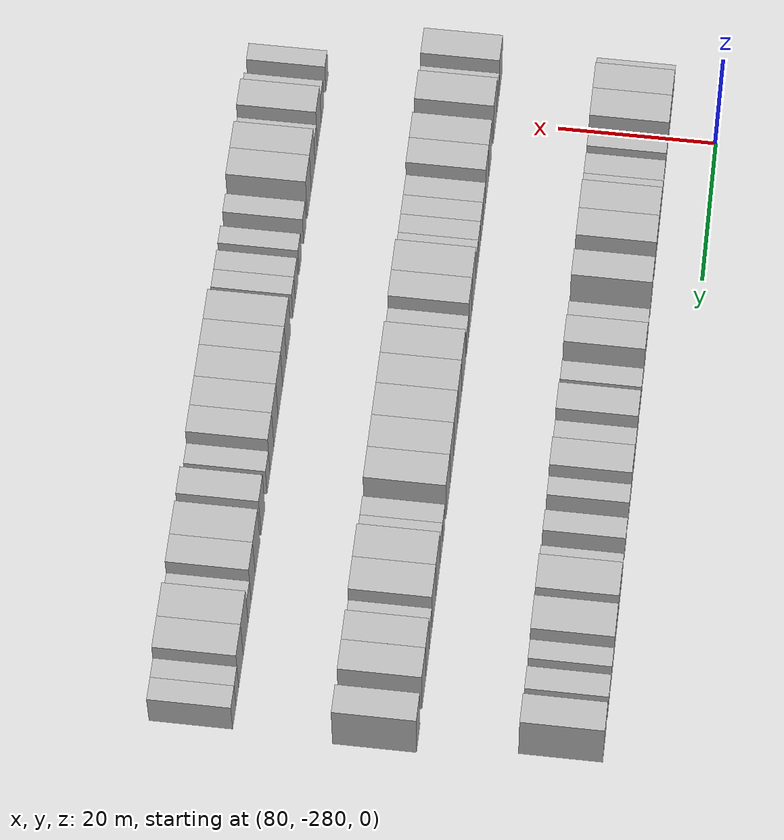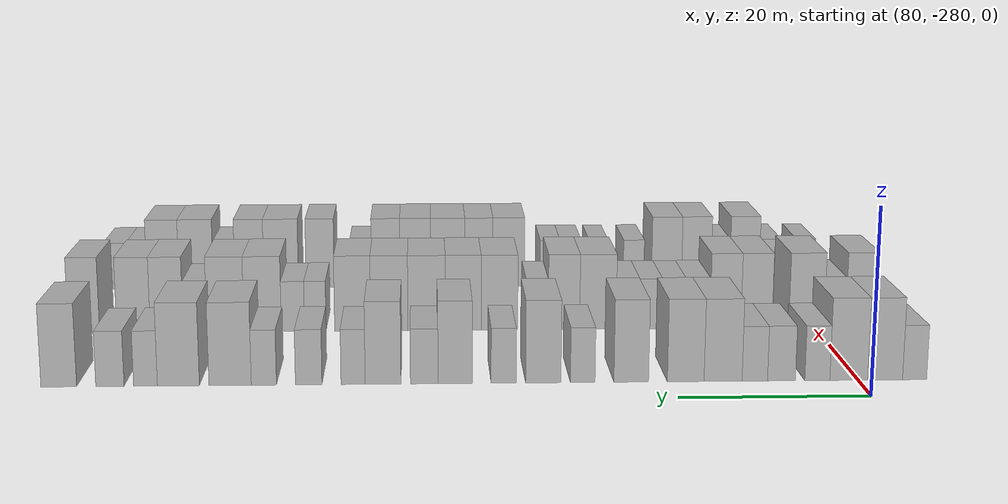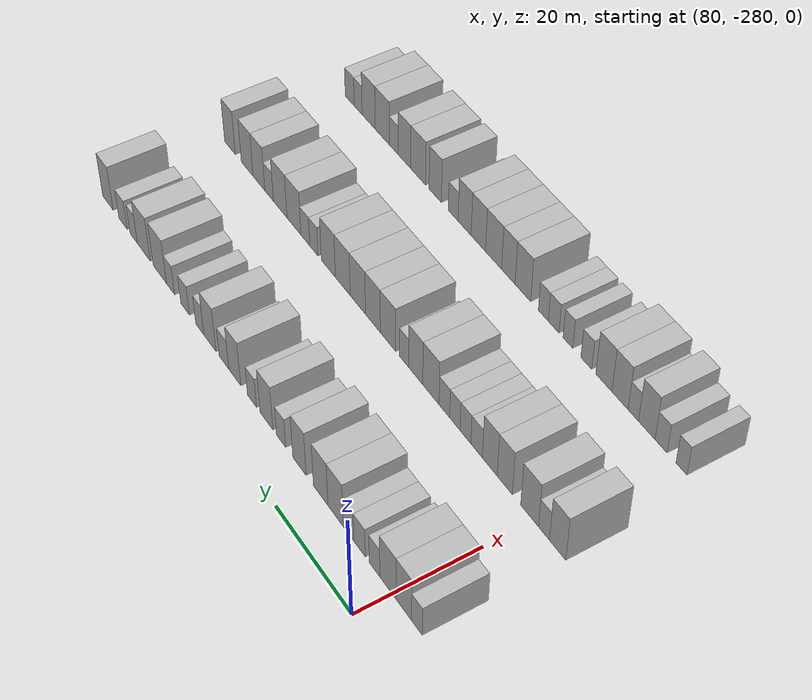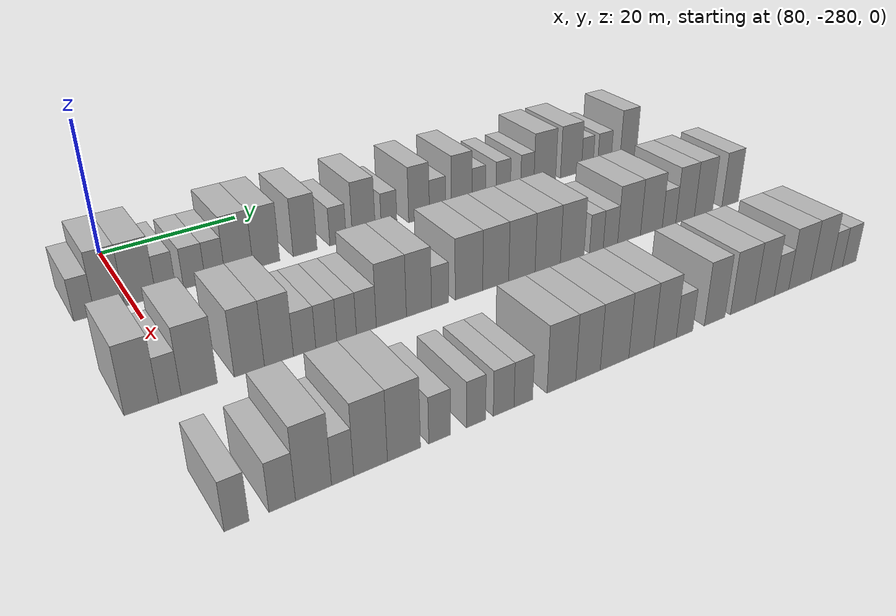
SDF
<sdf version="1.6">
 <world name="default">
  <model name="building_603">
   <static>1</static>
   <pose>91.0000 -286.0700 0 0.000000 0.000000 0.000000</pose>
   <link name="link">
    <pose>0 0 3.00 0 0 0</pose>
    <collision name="collision"><geometry><box><size>10.0000 2.5868 6.0000</size></box></geometry></collision>
    <visual name="visual">
     <cast_shadows>0</cast_shadows>
     <geometry><box><size>10.0000 2.5868 6.0000</size></box></geometry>
     <material>
      <script>
       <uri>model://HANNAS_wall/materials/scripts</uri>
       <uri>model://HANNAS_wall/materials/textures</uri>
       <name>vrc/HANNAS_wall</name>
      </script>
     </material>
    </visual>
   </link>
  </model>
  <model name="building_604">
   <static>1</static>
   <pose>91.0000 -282.9092 0 0.000000 0.000000 0.000000</pose>
   <link name="link">
    <pose>0 0 4.50 0 0 0</pose>
    <collision name="collision"><geometry><box><size>10.0000 3.7349 9.0000</size></box></geometry></collision>
    <visual name="visual">
     <cast_shadows>0</cast_shadows>
     <geometry><box><size>10.0000 3.7349 9.0000</size></box></geometry>
     <material>
      <script>
       <uri>model://HANNAS_wall/materials/scripts</uri>
       <uri>model://HANNAS_wall/materials/textures</uri>
       <name>vrc/HANNAS_wall</name>
      </script>
     </material>
    </visual>
   </link>
  </model>
  <model name="building_605">
   <static>1</static>
   <pose>91.0000 -279.0119 0 0.000000 0.000000 0.000000</pose>
   <link name="link">
    <pose>0 0 4.50 0 0 0</pose>
    <collision name="collision"><geometry><box><size>10.0000 4.0597 9.0000</size></box></geometry></collision>
    <visual name="visual">
     <cast_shadows>0</cast_shadows>
     <geometry><box><size>10.0000 4.0597 9.0000</size></box></geometry>
     <material>
      <script>
       <uri>model://HANNAS_wall/materials/scripts</uri>
       <uri>model://HANNAS_wall/materials/textures</uri>
       <name>vrc/HANNAS_wall</name>
      </script>
     </material>
    </visual>
   </link>
  </model>
  <model name="building_606">
   <static>1</static>
   <pose>91.0000 -275.6456 0 0.000000 0.000000 0.000000</pose>
   <link name="link">
    <pose>0 0 3.00 0 0 0</pose>
    <collision name="collision"><geometry><box><size>10.0000 2.6729 6.0000</size></box></geometry></collision>
    <visual name="visual">
     <cast_shadows>0</cast_shadows>
     <geometry><box><size>10.0000 2.6729 6.0000</size></box></geometry>
     <material>
      <script>
       <uri>model://HANNAS_wall/materials/scripts</uri>
       <uri>model://HANNAS_wall/materials/textures</uri>
       <name>vrc/HANNAS_wall</name>
      </script>
     </material>
    </visual>
   </link>
  </model>
  <model name="building_607">
   <static>1</static>
   <pose>91.0000 -271.8184 0 0.000000 0.000000 0.000000</pose>
   <link name="link">
    <pose>0 0 3.00 0 0 0</pose>
    <collision name="collision"><geometry><box><size>10.0000 2.9816 6.0000</size></box></geometry></collision>
    <visual name="visual">
     <cast_shadows>0</cast_shadows>
     <geometry><box><size>10.0000 2.9816 6.0000</size></box></geometry>
     <material>
      <script>
       <uri>model://HANNAS_wall/materials/scripts</uri>
       <uri>model://HANNAS_wall/materials/textures</uri>
       <name>vrc/HANNAS_wall</name>
      </script>
     </material>
    </visual>
   </link>
  </model>
  <model name="building_608">
   <static>1</static>
   <pose>91.0000 -268.9685 0 0.000000 0.000000 0.000000</pose>
   <link name="link">
    <pose>0 0 3.00 0 0 0</pose>
    <collision name="collision"><geometry><box><size>10.0000 2.7183 6.0000</size></box></geometry></collision>
    <visual name="visual">
     <cast_shadows>0</cast_shadows>
     <geometry><box><size>10.0000 2.7183 6.0000</size></box></geometry>
     <material>
      <script>
       <uri>model://HANNAS_wall/materials/scripts</uri>
       <uri>model://HANNAS_wall/materials/textures</uri>
       <name>vrc/HANNAS_wall</name>
      </script>
     </material>
    </visual>
   </link>
  </model>
  <model name="building_609">
   <static>1</static>
   <pose>91.0000 -265.5839 0 0.000000 0.000000 0.000000</pose>
   <link name="link">
    <pose>0 0 4.50 0 0 0</pose>
    <collision name="collision"><geometry><box><size>10.0000 4.0507 9.0000</size></box></geometry></collision>
    <visual name="visual">
     <cast_shadows>0</cast_shadows>
     <geometry><box><size>10.0000 4.0507 9.0000</size></box></geometry>
     <material>
      <script>
       <uri>model://HANNAS_wall/materials/scripts</uri>
       <uri>model://HANNAS_wall/materials/textures</uri>
       <name>vrc/HANNAS_wall</name>
      </script>
     </material>
    </visual>
   </link>
  </model>
  <model name="building_610">
   <static>1</static>
   <pose>91.0000 -261.6036 0 0.000000 0.000000 0.000000</pose>
   <link name="link">
    <pose>0 0 4.50 0 0 0</pose>
    <collision name="collision"><geometry><box><size>10.0000 3.9099 9.0000</size></box></geometry></collision>
    <visual name="visual">
     <cast_shadows>0</cast_shadows>
     <geometry><box><size>10.0000 3.9099 9.0000</size></box></geometry>
     <material>
      <script>
       <uri>model://HANNAS_wall/materials/scripts</uri>
       <uri>model://HANNAS_wall/materials/textures</uri>
       <name>vrc/HANNAS_wall</name>
      </script>
     </material>
    </visual>
   </link>
  </model>
  <model name="building_611">
   <static>1</static>
   <pose>91.0000 -255.8064 0 0.000000 0.000000 0.000000</pose>
   <link name="link">
    <pose>0 0 4.50 0 0 0</pose>
    <collision name="collision"><geometry><box><size>10.0000 3.6845 9.0000</size></box></geometry></collision>
    <visual name="visual">
     <cast_shadows>0</cast_shadows>
     <geometry><box><size>10.0000 3.6845 9.0000</size></box></geometry>
     <material>
      <script>
       <uri>model://HANNAS_wall/materials/scripts</uri>
       <uri>model://HANNAS_wall/materials/textures</uri>
       <name>vrc/HANNAS_wall</name>
      </script>
     </material>
    </visual>
   </link>
  </model>
  <model name="building_612">
   <static>1</static>
   <pose>91.0000 -250.6560 0 0.000000 0.000000 0.000000</pose>
   <link name="link">
    <pose>0 0 3.00 0 0 0</pose>
    <collision name="collision"><geometry><box><size>10.0000 2.6164 6.0000</size></box></geometry></collision>
    <visual name="visual">
     <cast_shadows>0</cast_shadows>
     <geometry><box><size>10.0000 2.6164 6.0000</size></box></geometry>
     <material>
      <script>
       <uri>model://HANNAS_wall/materials/scripts</uri>
       <uri>model://HANNAS_wall/materials/textures</uri>
       <name>vrc/HANNAS_wall</name>
      </script>
     </material>
    </visual>
   </link>
  </model>
  <model name="building_613">
   <static>1</static>
   <pose>91.0000 -246.4725 0 0.000000 0.000000 0.000000</pose>
   <link name="link">
    <pose>0 0 4.50 0 0 0</pose>
    <collision name="collision"><geometry><box><size>10.0000 3.7507 9.0000</size></box></geometry></collision>
    <visual name="visual">
     <cast_shadows>0</cast_shadows>
     <geometry><box><size>10.0000 3.7507 9.0000</size></box></geometry>
     <material>
      <script>
       <uri>model://HANNAS_wall/materials/scripts</uri>
       <uri>model://HANNAS_wall/materials/textures</uri>
       <name>vrc/HANNAS_wall</name>
      </script>
     </material>
    </visual>
   </link>
  </model>
  <model name="building_614">
   <static>1</static>
   <pose>91.0000 -242.2697 0 0.000000 0.000000 0.000000</pose>
   <link name="link">
    <pose>0 0 3.00 0 0 0</pose>
    <collision name="collision"><geometry><box><size>10.0000 2.6548 6.0000</size></box></geometry></collision>
    <visual name="visual">
     <cast_shadows>0</cast_shadows>
     <geometry><box><size>10.0000 2.6548 6.0000</size></box></geometry>
     <material>
      <script>
       <uri>model://HANNAS_wall/materials/scripts</uri>
       <uri>model://HANNAS_wall/materials/textures</uri>
       <name>vrc/HANNAS_wall</name>
      </script>
     </material>
    </visual>
   </link>
  </model>
  <model name="building_615">
   <static>1</static>
   <pose>91.0000 -237.1326 0 0.000000 0.000000 0.000000</pose>
   <link name="link">
    <pose>0 0 4.50 0 0 0</pose>
    <collision name="collision"><geometry><box><size>10.0000 3.6194 9.0000</size></box></geometry></collision>
    <visual name="visual">
     <cast_shadows>0</cast_shadows>
     <geometry><box><size>10.0000 3.6194 9.0000</size></box></geometry>
     <material>
      <script>
       <uri>model://HANNAS_wall/materials/scripts</uri>
       <uri>model://HANNAS_wall/materials/textures</uri>
       <name>vrc/HANNAS_wall</name>
      </script>
     </material>
    </visual>
   </link>
  </model>
  <model name="building_616">
   <static>1</static>
   <pose>91.0000 -233.8683 0 0.000000 0.000000 0.000000</pose>
   <link name="link">
    <pose>0 0 3.00 0 0 0</pose>
    <collision name="collision"><geometry><box><size>10.0000 2.9094 6.0000</size></box></geometry></collision>
    <visual name="visual">
     <cast_shadows>0</cast_shadows>
     <geometry><box><size>10.0000 2.9094 6.0000</size></box></geometry>
     <material>
      <script>
       <uri>model://HANNAS_wall/materials/scripts</uri>
       <uri>model://HANNAS_wall/materials/textures</uri>
       <name>vrc/HANNAS_wall</name>
      </script>
     </material>
    </visual>
   </link>
  </model>
  <model name="building_617">
   <static>1</static>
   <pose>91.0000 -229.5248 0 0.000000 0.000000 0.000000</pose>
   <link name="link">
    <pose>0 0 4.50 0 0 0</pose>
    <collision name="collision"><geometry><box><size>10.0000 3.7775 9.0000</size></box></geometry></collision>
    <visual name="visual">
     <cast_shadows>0</cast_shadows>
     <geometry><box><size>10.0000 3.7775 9.0000</size></box></geometry>
     <material>
      <script>
       <uri>model://HANNAS_wall/materials/scripts</uri>
       <uri>model://HANNAS_wall/materials/textures</uri>
       <name>vrc/HANNAS_wall</name>
      </script>
     </material>
    </visual>
   </link>
  </model>
  <model name="building_618">
   <static>1</static>
   <pose>91.0000 -226.3622 0 0.000000 0.000000 0.000000</pose>
   <link name="link">
    <pose>0 0 3.00 0 0 0</pose>
    <collision name="collision"><geometry><box><size>10.0000 2.5478 6.0000</size></box></geometry></collision>
    <visual name="visual">
     <cast_shadows>0</cast_shadows>
     <geometry><box><size>10.0000 2.5478 6.0000</size></box></geometry>
     <material>
      <script>
       <uri>model://HANNAS_wall/materials/scripts</uri>
       <uri>model://HANNAS_wall/materials/textures</uri>
       <name>vrc/HANNAS_wall</name>
      </script>
     </material>
    </visual>
   </link>
  </model>
  <model name="building_619">
   <static>1</static>
   <pose>91.0000 -221.6904 0 0.000000 0.000000 0.000000</pose>
   <link name="link">
    <pose>0 0 3.00 0 0 0</pose>
    <collision name="collision"><geometry><box><size>10.0000 2.7957 6.0000</size></box></geometry></collision>
    <visual name="visual">
     <cast_shadows>0</cast_shadows>
     <geometry><box><size>10.0000 2.7957 6.0000</size></box></geometry>
     <material>
      <script>
       <uri>model://HANNAS_wall/materials/scripts</uri>
       <uri>model://HANNAS_wall/materials/textures</uri>
       <name>vrc/HANNAS_wall</name>
      </script>
     </material>
    </visual>
   </link>
  </model>
  <model name="building_620">
   <static>1</static>
   <pose>91.0000 -216.9709 0 0.000000 0.000000 0.000000</pose>
   <link name="link">
    <pose>0 0 3.00 0 0 0</pose>
    <collision name="collision"><geometry><box><size>10.0000 2.6433 6.0000</size></box></geometry></collision>
    <visual name="visual">
     <cast_shadows>0</cast_shadows>
     <geometry><box><size>10.0000 2.6433 6.0000</size></box></geometry>
     <material>
      <script>
       <uri>model://HANNAS_wall/materials/scripts</uri>
       <uri>model://HANNAS_wall/materials/textures</uri>
       <name>vrc/HANNAS_wall</name>
      </script>
     </material>
    </visual>
   </link>
  </model>
  <model name="building_621">
   <static>1</static>
   <pose>91.0000 -213.4275 0 0.000000 0.000000 0.000000</pose>
   <link name="link">
    <pose>0 0 4.50 0 0 0</pose>
    <collision name="collision"><geometry><box><size>10.0000 4.4435 9.0000</size></box></geometry></collision>
    <visual name="visual">
     <cast_shadows>0</cast_shadows>
     <geometry><box><size>10.0000 4.4435 9.0000</size></box></geometry>
     <material>
      <script>
       <uri>model://HANNAS_wall/materials/scripts</uri>
       <uri>model://HANNAS_wall/materials/textures</uri>
       <name>vrc/HANNAS_wall</name>
      </script>
     </material>
    </visual>
   </link>
  </model>
  <model name="building_622">
   <static>1</static>
   <pose>91.0000 -208.0043 0 0.000000 0.000000 0.000000</pose>
   <link name="link">
    <pose>0 0 4.50 0 0 0</pose>
    <collision name="collision"><geometry><box><size>10.0000 4.4029 9.0000</size></box></geometry></collision>
    <visual name="visual">
     <cast_shadows>0</cast_shadows>
     <geometry><box><size>10.0000 4.4029 9.0000</size></box></geometry>
     <material>
      <script>
       <uri>model://HANNAS_wall/materials/scripts</uri>
       <uri>model://HANNAS_wall/materials/textures</uri>
       <name>vrc/HANNAS_wall</name>
      </script>
     </material>
    </visual>
   </link>
  </model>
  <model name="building_623">
   <static>1</static>
   <pose>91.0000 -204.5569 0 0.000000 0.000000 0.000000</pose>
   <link name="link">
    <pose>0 0 3.00 0 0 0</pose>
    <collision name="collision"><geometry><box><size>10.0000 2.4921 6.0000</size></box></geometry></collision>
    <visual name="visual">
     <cast_shadows>0</cast_shadows>
     <geometry><box><size>10.0000 2.4921 6.0000</size></box></geometry>
     <material>
      <script>
       <uri>model://HANNAS_wall/materials/scripts</uri>
       <uri>model://HANNAS_wall/materials/textures</uri>
       <name>vrc/HANNAS_wall</name>
      </script>
     </material>
    </visual>
   </link>
  </model>
  <model name="building_624">
   <static>1</static>
   <pose>91.0000 -200.8309 0 0.000000 0.000000 0.000000</pose>
   <link name="link">
    <pose>0 0 3.00 0 0 0</pose>
    <collision name="collision"><geometry><box><size>10.0000 2.9599 6.0000</size></box></geometry></collision>
    <visual name="visual">
     <cast_shadows>0</cast_shadows>
     <geometry><box><size>10.0000 2.9599 6.0000</size></box></geometry>
     <material>
      <script>
       <uri>model://HANNAS_wall/materials/scripts</uri>
       <uri>model://HANNAS_wall/materials/textures</uri>
       <name>vrc/HANNAS_wall</name>
      </script>
     </material>
    </visual>
   </link>
  </model>
  <model name="building_625">
   <static>1</static>
   <pose>91.0000 -195.4851 0 0.000000 0.000000 0.000000</pose>
   <link name="link">
    <pose>0 0 4.50 0 0 0</pose>
    <collision name="collision"><geometry><box><size>10.0000 3.7318 9.0000</size></box></geometry></collision>
    <visual name="visual">
     <cast_shadows>0</cast_shadows>
     <geometry><box><size>10.0000 3.7318 9.0000</size></box></geometry>
     <material>
      <script>
       <uri>model://HANNAS_wall/materials/scripts</uri>
       <uri>model://HANNAS_wall/materials/textures</uri>
       <name>vrc/HANNAS_wall</name>
      </script>
     </material>
    </visual>
   </link>
  </model>
  <model name="building_796">
   <static>1</static>
   <pose>113.0000 -285.5553 0 0.000000 0.000000 0.000000</pose>
   <link name="link">
    <pose>0 0 4.50 0 0 0</pose>
    <collision name="collision"><geometry><box><size>10.0000 3.7736 9.0000</size></box></geometry></collision>
    <visual name="visual">
     <cast_shadows>0</cast_shadows>
     <geometry><box><size>10.0000 3.7736 9.0000</size></box></geometry>
     <material>
      <script>
       <uri>model://HANNAS_wall/materials/scripts</uri>
       <uri>model://HANNAS_wall/materials/textures</uri>
       <name>vrc/HANNAS_wall</name>
      </script>
     </material>
    </visual>
   </link>
  </model>
  <model name="building_797">
   <static>1</static>
   <pose>113.0000 -282.4001 0 0.000000 0.000000 0.000000</pose>
   <link name="link">
    <pose>0 0 3.00 0 0 0</pose>
    <collision name="collision"><geometry><box><size>10.0000 2.5367 6.0000</size></box></geometry></collision>
    <visual name="visual">
     <cast_shadows>0</cast_shadows>
     <geometry><box><size>10.0000 2.5367 6.0000</size></box></geometry>
     <material>
      <script>
       <uri>model://HANNAS_wall/materials/scripts</uri>
       <uri>model://HANNAS_wall/materials/textures</uri>
       <name>vrc/HANNAS_wall</name>
      </script>
     </material>
    </visual>
   </link>
  </model>
  <model name="building_798">
   <static>1</static>
   <pose>113.0000 -279.0305 0 0.000000 0.000000 0.000000</pose>
   <link name="link">
    <pose>0 0 4.50 0 0 0</pose>
    <collision name="collision"><geometry><box><size>10.0000 4.2026 9.0000</size></box></geometry></collision>
    <visual name="visual">
     <cast_shadows>0</cast_shadows>
     <geometry><box><size>10.0000 4.2026 9.0000</size></box></geometry>
     <material>
      <script>
       <uri>model://HANNAS_wall/materials/scripts</uri>
       <uri>model://HANNAS_wall/materials/textures</uri>
       <name>vrc/HANNAS_wall</name>
      </script>
     </material>
    </visual>
   </link>
  </model>
  <model name="building_799">
   <static>1</static>
   <pose>113.0000 -273.0871 0 0.000000 0.000000 0.000000</pose>
   <link name="link">
    <pose>0 0 4.50 0 0 0</pose>
    <collision name="collision"><geometry><box><size>10.0000 3.6840 9.0000</size></box></geometry></collision>
    <visual name="visual">
     <cast_shadows>0</cast_shadows>
     <geometry><box><size>10.0000 3.6840 9.0000</size></box></geometry>
     <material>
      <script>
       <uri>model://HANNAS_wall/materials/scripts</uri>
       <uri>model://HANNAS_wall/materials/textures</uri>
       <name>vrc/HANNAS_wall</name>
      </script>
     </material>
    </visual>
   </link>
  </model>
  <model name="building_800">
   <static>1</static>
   <pose>113.0000 -269.4151 0 0.000000 0.000000 0.000000</pose>
   <link name="link">
    <pose>0 0 4.50 0 0 0</pose>
    <collision name="collision"><geometry><box><size>10.0000 3.6601 9.0000</size></box></geometry></collision>
    <visual name="visual">
     <cast_shadows>0</cast_shadows>
     <geometry><box><size>10.0000 3.6601 9.0000</size></box></geometry>
     <material>
      <script>
       <uri>model://HANNAS_wall/materials/scripts</uri>
       <uri>model://HANNAS_wall/materials/textures</uri>
       <name>vrc/HANNAS_wall</name>
      </script>
     </material>
    </visual>
   </link>
  </model>
  <model name="building_801">
   <static>1</static>
   <pose>113.0000 -266.1407 0 0.000000 0.000000 0.000000</pose>
   <link name="link">
    <pose>0 0 3.00 0 0 0</pose>
    <collision name="collision"><geometry><box><size>10.0000 2.8886 6.0000</size></box></geometry></collision>
    <visual name="visual">
     <cast_shadows>0</cast_shadows>
     <geometry><box><size>10.0000 2.8886 6.0000</size></box></geometry>
     <material>
      <script>
       <uri>model://HANNAS_wall/materials/scripts</uri>
       <uri>model://HANNAS_wall/materials/textures</uri>
       <name>vrc/HANNAS_wall</name>
      </script>
     </material>
    </visual>
   </link>
  </model>
  <model name="building_802">
   <static>1</static>
   <pose>113.0000 -263.3076 0 0.000000 0.000000 0.000000</pose>
   <link name="link">
    <pose>0 0 3.00 0 0 0</pose>
    <collision name="collision"><geometry><box><size>10.0000 2.7776 6.0000</size></box></geometry></collision>
    <visual name="visual">
     <cast_shadows>0</cast_shadows>
     <geometry><box><size>10.0000 2.7776 6.0000</size></box></geometry>
     <material>
      <script>
       <uri>model://HANNAS_wall/materials/scripts</uri>
       <uri>model://HANNAS_wall/materials/textures</uri>
       <name>vrc/HANNAS_wall</name>
      </script>
     </material>
    </visual>
   </link>
  </model>
  <model name="building_803">
   <static>1</static>
   <pose>113.0000 -260.5875 0 0.000000 0.000000 0.000000</pose>
   <link name="link">
    <pose>0 0 3.00 0 0 0</pose>
    <collision name="collision"><geometry><box><size>10.0000 2.6626 6.0000</size></box></geometry></collision>
    <visual name="visual">
     <cast_shadows>0</cast_shadows>
     <geometry><box><size>10.0000 2.6626 6.0000</size></box></geometry>
     <material>
      <script>
       <uri>model://HANNAS_wall/materials/scripts</uri>
       <uri>model://HANNAS_wall/materials/textures</uri>
       <name>vrc/HANNAS_wall</name>
      </script>
     </material>
    </visual>
   </link>
  </model>
  <model name="building_804">
   <static>1</static>
   <pose>113.0000 -257.8760 0 0.000000 0.000000 0.000000</pose>
   <link name="link">
    <pose>0 0 3.00 0 0 0</pose>
    <collision name="collision"><geometry><box><size>10.0000 2.7604 6.0000</size></box></geometry></collision>
    <visual name="visual">
     <cast_shadows>0</cast_shadows>
     <geometry><box><size>10.0000 2.7604 6.0000</size></box></geometry>
     <material>
      <script>
       <uri>model://HANNAS_wall/materials/scripts</uri>
       <uri>model://HANNAS_wall/materials/textures</uri>
       <name>vrc/HANNAS_wall</name>
      </script>
     </material>
    </visual>
   </link>
  </model>
  <model name="building_805">
   <static>1</static>
   <pose>113.0000 -254.3447 0 0.000000 0.000000 0.000000</pose>
   <link name="link">
    <pose>0 0 4.50 0 0 0</pose>
    <collision name="collision"><geometry><box><size>10.0000 4.3023 9.0000</size></box></geometry></collision>
    <visual name="visual">
     <cast_shadows>0</cast_shadows>
     <geometry><box><size>10.0000 4.3023 9.0000</size></box></geometry>
     <material>
      <script>
       <uri>model://HANNAS_wall/materials/scripts</uri>
       <uri>model://HANNAS_wall/materials/textures</uri>
       <name>vrc/HANNAS_wall</name>
      </script>
     </material>
    </visual>
   </link>
  </model>
  <model name="building_806">
   <static>1</static>
   <pose>113.0000 -250.3423 0 0.000000 0.000000 0.000000</pose>
   <link name="link">
    <pose>0 0 4.50 0 0 0</pose>
    <collision name="collision"><geometry><box><size>10.0000 3.7024 9.0000</size></box></geometry></collision>
    <visual name="visual">
     <cast_shadows>0</cast_shadows>
     <geometry><box><size>10.0000 3.7024 9.0000</size></box></geometry>
     <material>
      <script>
       <uri>model://HANNAS_wall/materials/scripts</uri>
       <uri>model://HANNAS_wall/materials/textures</uri>
       <name>vrc/HANNAS_wall</name>
      </script>
     </material>
    </visual>
   </link>
  </model>
  <model name="building_807">
   <static>1</static>
   <pose>113.0000 -247.1948 0 0.000000 0.000000 0.000000</pose>
   <link name="link">
    <pose>0 0 3.00 0 0 0</pose>
    <collision name="collision"><geometry><box><size>10.0000 2.5926 6.0000</size></box></geometry></collision>
    <visual name="visual">
     <cast_shadows>0</cast_shadows>
     <geometry><box><size>10.0000 2.5926 6.0000</size></box></geometry>
     <material>
      <script>
       <uri>model://HANNAS_wall/materials/scripts</uri>
       <uri>model://HANNAS_wall/materials/textures</uri>
       <name>vrc/HANNAS_wall</name>
      </script>
     </material>
    </visual>
   </link>
  </model>
  <model name="building_808">
   <static>1</static>
   <pose>113.0000 -242.7494 0 0.000000 0.000000 0.000000</pose>
   <link name="link">
    <pose>0 0 4.50 0 0 0</pose>
    <collision name="collision"><geometry><box><size>10.0000 4.2982 9.0000</size></box></geometry></collision>
    <visual name="visual">
     <cast_shadows>0</cast_shadows>
     <geometry><box><size>10.0000 4.2982 9.0000</size></box></geometry>
     <material>
      <script>
       <uri>model://HANNAS_wall/materials/scripts</uri>
       <uri>model://HANNAS_wall/materials/textures</uri>
       <name>vrc/HANNAS_wall</name>
      </script>
     </material>
    </visual>
   </link>
  </model>
  <model name="building_809">
   <static>1</static>
   <pose>113.0000 -238.5031 0 0.000000 0.000000 0.000000</pose>
   <link name="link">
    <pose>0 0 4.50 0 0 0</pose>
    <collision name="collision"><geometry><box><size>10.0000 4.1945 9.0000</size></box></geometry></collision>
    <visual name="visual">
     <cast_shadows>0</cast_shadows>
     <geometry><box><size>10.0000 4.1945 9.0000</size></box></geometry>
     <material>
      <script>
       <uri>model://HANNAS_wall/materials/scripts</uri>
       <uri>model://HANNAS_wall/materials/textures</uri>
       <name>vrc/HANNAS_wall</name>
      </script>
     </material>
    </visual>
   </link>
  </model>
  <model name="building_810">
   <static>1</static>
   <pose>113.0000 -234.2065 0 0.000000 0.000000 0.000000</pose>
   <link name="link">
    <pose>0 0 4.50 0 0 0</pose>
    <collision name="collision"><geometry><box><size>10.0000 4.3987 9.0000</size></box></geometry></collision>
    <visual name="visual">
     <cast_shadows>0</cast_shadows>
     <geometry><box><size>10.0000 4.3987 9.0000</size></box></geometry>
     <material>
      <script>
       <uri>model://HANNAS_wall/materials/scripts</uri>
       <uri>model://HANNAS_wall/materials/textures</uri>
       <name>vrc/HANNAS_wall</name>
      </script>
     </material>
    </visual>
   </link>
  </model>
  <model name="building_811">
   <static>1</static>
   <pose>113.0000 -229.8232 0 0.000000 0.000000 0.000000</pose>
   <link name="link">
    <pose>0 0 4.50 0 0 0</pose>
    <collision name="collision"><geometry><box><size>10.0000 4.3679 9.0000</size></box></geometry></collision>
    <visual name="visual">
     <cast_shadows>0</cast_shadows>
     <geometry><box><size>10.0000 4.3679 9.0000</size></box></geometry>
     <material>
      <script>
       <uri>model://HANNAS_wall/materials/scripts</uri>
       <uri>model://HANNAS_wall/materials/textures</uri>
       <name>vrc/HANNAS_wall</name>
      </script>
     </material>
    </visual>
   </link>
  </model>
  <model name="building_812">
   <static>1</static>
   <pose>113.0000 -225.5282 0 0.000000 0.000000 0.000000</pose>
   <link name="link">
    <pose>0 0 4.50 0 0 0</pose>
    <collision name="collision"><geometry><box><size>10.0000 4.2219 9.0000</size></box></geometry></collision>
    <visual name="visual">
     <cast_shadows>0</cast_shadows>
     <geometry><box><size>10.0000 4.2219 9.0000</size></box></geometry>
     <material>
      <script>
       <uri>model://HANNAS_wall/materials/scripts</uri>
       <uri>model://HANNAS_wall/materials/textures</uri>
       <name>vrc/HANNAS_wall</name>
      </script>
     </material>
    </visual>
   </link>
  </model>
  <model name="building_813">
   <static>1</static>
   <pose>113.0000 -221.1577 0 0.000000 0.000000 0.000000</pose>
   <link name="link">
    <pose>0 0 3.00 0 0 0</pose>
    <collision name="collision"><geometry><box><size>10.0000 2.5192 6.0000</size></box></geometry></collision>
    <visual name="visual">
     <cast_shadows>0</cast_shadows>
     <geometry><box><size>10.0000 2.5192 6.0000</size></box></geometry>
     <material>
      <script>
       <uri>model://HANNAS_wall/materials/scripts</uri>
       <uri>model://HANNAS_wall/materials/textures</uri>
       <name>vrc/HANNAS_wall</name>
      </script>
     </material>
    </visual>
   </link>
  </model>
  <model name="building_814">
   <static>1</static>
   <pose>113.0000 -218.5474 0 0.000000 0.000000 0.000000</pose>
   <link name="link">
    <pose>0 0 3.00 0 0 0</pose>
    <collision name="collision"><geometry><box><size>10.0000 2.7015 6.0000</size></box></geometry></collision>
    <visual name="visual">
     <cast_shadows>0</cast_shadows>
     <geometry><box><size>10.0000 2.7015 6.0000</size></box></geometry>
     <material>
      <script>
       <uri>model://HANNAS_wall/materials/scripts</uri>
       <uri>model://HANNAS_wall/materials/textures</uri>
       <name>vrc/HANNAS_wall</name>
      </script>
     </material>
    </visual>
   </link>
  </model>
  <model name="building_815">
   <static>1</static>
   <pose>113.0000 -215.0108 0 0.000000 0.000000 0.000000</pose>
   <link name="link">
    <pose>0 0 4.50 0 0 0</pose>
    <collision name="collision"><geometry><box><size>10.0000 4.3716 9.0000</size></box></geometry></collision>
    <visual name="visual">
     <cast_shadows>0</cast_shadows>
     <geometry><box><size>10.0000 4.3716 9.0000</size></box></geometry>
     <material>
      <script>
       <uri>model://HANNAS_wall/materials/scripts</uri>
       <uri>model://HANNAS_wall/materials/textures</uri>
       <name>vrc/HANNAS_wall</name>
      </script>
     </material>
    </visual>
   </link>
  </model>
  <model name="building_816">
   <static>1</static>
   <pose>113.0000 -210.6635 0 0.000000 0.000000 0.000000</pose>
   <link name="link">
    <pose>0 0 4.50 0 0 0</pose>
    <collision name="collision"><geometry><box><size>10.0000 4.3232 9.0000</size></box></geometry></collision>
    <visual name="visual">
     <cast_shadows>0</cast_shadows>
     <geometry><box><size>10.0000 4.3232 9.0000</size></box></geometry>
     <material>
      <script>
       <uri>model://HANNAS_wall/materials/scripts</uri>
       <uri>model://HANNAS_wall/materials/textures</uri>
       <name>vrc/HANNAS_wall</name>
      </script>
     </material>
    </visual>
   </link>
  </model>
  <model name="building_817">
   <static>1</static>
   <pose>113.0000 -207.1219 0 0.000000 0.000000 0.000000</pose>
   <link name="link">
    <pose>0 0 3.00 0 0 0</pose>
    <collision name="collision"><geometry><box><size>10.0000 2.7600 6.0000</size></box></geometry></collision>
    <visual name="visual">
     <cast_shadows>0</cast_shadows>
     <geometry><box><size>10.0000 2.7600 6.0000</size></box></geometry>
     <material>
      <script>
       <uri>model://HANNAS_wall/materials/scripts</uri>
       <uri>model://HANNAS_wall/materials/textures</uri>
       <name>vrc/HANNAS_wall</name>
      </script>
     </material>
    </visual>
   </link>
  </model>
  <model name="building_818">
   <static>1</static>
   <pose>113.0000 -203.8257 0 0.000000 0.000000 0.000000</pose>
   <link name="link">
    <pose>0 0 4.50 0 0 0</pose>
    <collision name="collision"><geometry><box><size>10.0000 3.8324 9.0000</size></box></geometry></collision>
    <visual name="visual">
     <cast_shadows>0</cast_shadows>
     <geometry><box><size>10.0000 3.8324 9.0000</size></box></geometry>
     <material>
      <script>
       <uri>model://HANNAS_wall/materials/scripts</uri>
       <uri>model://HANNAS_wall/materials/textures</uri>
       <name>vrc/HANNAS_wall</name>
      </script>
     </material>
    </visual>
   </link>
  </model>
  <model name="building_819">
   <static>1</static>
   <pose>113.0000 -199.9642 0 0.000000 0.000000 0.000000</pose>
   <link name="link">
    <pose>0 0 4.50 0 0 0</pose>
    <collision name="collision"><geometry><box><size>10.0000 3.8904 9.0000</size></box></geometry></collision>
    <visual name="visual">
     <cast_shadows>0</cast_shadows>
     <geometry><box><size>10.0000 3.8904 9.0000</size></box></geometry>
     <material>
      <script>
       <uri>model://HANNAS_wall/materials/scripts</uri>
       <uri>model://HANNAS_wall/materials/textures</uri>
       <name>vrc/HANNAS_wall</name>
      </script>
     </material>
    </visual>
   </link>
  </model>
  <model name="building_820">
   <static>1</static>
   <pose>113.0000 -194.2078 0 0.000000 0.000000 0.000000</pose>
   <link name="link">
    <pose>0 0 4.50 0 0 0</pose>
    <collision name="collision"><geometry><box><size>10.0000 3.6223 9.0000</size></box></geometry></collision>
    <visual name="visual">
     <cast_shadows>0</cast_shadows>
     <geometry><box><size>10.0000 3.6223 9.0000</size></box></geometry>
     <material>
      <script>
       <uri>model://HANNAS_wall/materials/scripts</uri>
       <uri>model://HANNAS_wall/materials/textures</uri>
       <name>vrc/HANNAS_wall</name>
      </script>
     </material>
    </visual>
   </link>
  </model>
  <model name="building_979">
   <static>1</static>
   <pose>135.0000 -283.3328 0 0.000000 0.000000 0.000000</pose>
   <link name="link">
    <pose>0 0 3.00 0 0 0</pose>
    <collision name="collision"><geometry><box><size>10.0000 2.4524 6.0000</size></box></geometry></collision>
    <visual name="visual">
     <cast_shadows>0</cast_shadows>
     <geometry><box><size>10.0000 2.4524 6.0000</size></box></geometry>
     <material>
      <script>
       <uri>model://HANNAS_wall/materials/scripts</uri>
       <uri>model://HANNAS_wall/materials/textures</uri>
       <name>vrc/HANNAS_wall</name>
      </script>
     </material>
    </visual>
   </link>
  </model>
  <model name="building_980">
   <static>1</static>
   <pose>135.0000 -278.7388 0 0.000000 0.000000 0.000000</pose>
   <link name="link">
    <pose>0 0 3.00 0 0 0</pose>
    <collision name="collision"><geometry><box><size>10.0000 2.7356 6.0000</size></box></geometry></collision>
    <visual name="visual">
     <cast_shadows>0</cast_shadows>
     <geometry><box><size>10.0000 2.7356 6.0000</size></box></geometry>
     <material>
      <script>
       <uri>model://HANNAS_wall/materials/scripts</uri>
       <uri>model://HANNAS_wall/materials/textures</uri>
       <name>vrc/HANNAS_wall</name>
      </script>
     </material>
    </visual>
   </link>
  </model>
  <model name="building_981">
   <static>1</static>
   <pose>135.0000 -275.4540 0 0.000000 0.000000 0.000000</pose>
   <link name="link">
    <pose>0 0 4.50 0 0 0</pose>
    <collision name="collision"><geometry><box><size>10.0000 3.8339 9.0000</size></box></geometry></collision>
    <visual name="visual">
     <cast_shadows>0</cast_shadows>
     <geometry><box><size>10.0000 3.8339 9.0000</size></box></geometry>
     <material>
      <script>
       <uri>model://HANNAS_wall/materials/scripts</uri>
       <uri>model://HANNAS_wall/materials/textures</uri>
       <name>vrc/HANNAS_wall</name>
      </script>
     </material>
    </visual>
   </link>
  </model>
  <model name="building_982">
   <static>1</static>
   <pose>135.0000 -272.3208 0 0.000000 0.000000 0.000000</pose>
   <link name="link">
    <pose>0 0 3.00 0 0 0</pose>
    <collision name="collision"><geometry><box><size>10.0000 2.4325 6.0000</size></box></geometry></collision>
    <visual name="visual">
     <cast_shadows>0</cast_shadows>
     <geometry><box><size>10.0000 2.4325 6.0000</size></box></geometry>
     <material>
      <script>
       <uri>model://HANNAS_wall/materials/scripts</uri>
       <uri>model://HANNAS_wall/materials/textures</uri>
       <name>vrc/HANNAS_wall</name>
      </script>
     </material>
    </visual>
   </link>
  </model>
  <model name="building_983">
   <static>1</static>
   <pose>135.0000 -269.1844 0 0.000000 0.000000 0.000000</pose>
   <link name="link">
    <pose>0 0 4.50 0 0 0</pose>
    <collision name="collision"><geometry><box><size>10.0000 3.8403 9.0000</size></box></geometry></collision>
    <visual name="visual">
     <cast_shadows>0</cast_shadows>
     <geometry><box><size>10.0000 3.8403 9.0000</size></box></geometry>
     <material>
      <script>
       <uri>model://HANNAS_wall/materials/scripts</uri>
       <uri>model://HANNAS_wall/materials/textures</uri>
       <name>vrc/HANNAS_wall</name>
      </script>
     </material>
    </visual>
   </link>
  </model>
  <model name="building_984">
   <static>1</static>
   <pose>135.0000 -265.3167 0 0.000000 0.000000 0.000000</pose>
   <link name="link">
    <pose>0 0 4.50 0 0 0</pose>
    <collision name="collision"><geometry><box><size>10.0000 3.8949 9.0000</size></box></geometry></collision>
    <visual name="visual">
     <cast_shadows>0</cast_shadows>
     <geometry><box><size>10.0000 3.8949 9.0000</size></box></geometry>
     <material>
      <script>
       <uri>model://HANNAS_wall/materials/scripts</uri>
       <uri>model://HANNAS_wall/materials/textures</uri>
       <name>vrc/HANNAS_wall</name>
      </script>
     </material>
    </visual>
   </link>
  </model>
  <model name="building_985">
   <static>1</static>
   <pose>135.0000 -261.0291 0 0.000000 0.000000 0.000000</pose>
   <link name="link">
    <pose>0 0 3.00 0 0 0</pose>
    <collision name="collision"><geometry><box><size>10.0000 2.6804 6.0000</size></box></geometry></collision>
    <visual name="visual">
     <cast_shadows>0</cast_shadows>
     <geometry><box><size>10.0000 2.6804 6.0000</size></box></geometry>
     <material>
      <script>
       <uri>model://HANNAS_wall/materials/scripts</uri>
       <uri>model://HANNAS_wall/materials/textures</uri>
       <name>vrc/HANNAS_wall</name>
      </script>
     </material>
    </visual>
   </link>
  </model>
  <model name="building_986">
   <static>1</static>
   <pose>135.0000 -256.4564 0 0.000000 0.000000 0.000000</pose>
   <link name="link">
    <pose>0 0 3.00 0 0 0</pose>
    <collision name="collision"><geometry><box><size>10.0000 2.4651 6.0000</size></box></geometry></collision>
    <visual name="visual">
     <cast_shadows>0</cast_shadows>
     <geometry><box><size>10.0000 2.4651 6.0000</size></box></geometry>
     <material>
      <script>
       <uri>model://HANNAS_wall/materials/scripts</uri>
       <uri>model://HANNAS_wall/materials/textures</uri>
       <name>vrc/HANNAS_wall</name>
      </script>
     </material>
    </visual>
   </link>
  </model>
  <model name="building_987">
   <static>1</static>
   <pose>135.0000 -252.8524 0 0.000000 0.000000 0.000000</pose>
   <link name="link">
    <pose>0 0 3.00 0 0 0</pose>
    <collision name="collision"><geometry><box><size>10.0000 2.7428 6.0000</size></box></geometry></collision>
    <visual name="visual">
     <cast_shadows>0</cast_shadows>
     <geometry><box><size>10.0000 2.7428 6.0000</size></box></geometry>
     <material>
      <script>
       <uri>model://HANNAS_wall/materials/scripts</uri>
       <uri>model://HANNAS_wall/materials/textures</uri>
       <name>vrc/HANNAS_wall</name>
      </script>
     </material>
    </visual>
   </link>
  </model>
  <model name="building_988">
   <static>1</static>
   <pose>135.0000 -250.2057 0 0.000000 0.000000 0.000000</pose>
   <link name="link">
    <pose>0 0 3.00 0 0 0</pose>
    <collision name="collision"><geometry><box><size>10.0000 2.5507 6.0000</size></box></geometry></collision>
    <visual name="visual">
     <cast_shadows>0</cast_shadows>
     <geometry><box><size>10.0000 2.5507 6.0000</size></box></geometry>
     <material>
      <script>
       <uri>model://HANNAS_wall/materials/scripts</uri>
       <uri>model://HANNAS_wall/materials/textures</uri>
       <name>vrc/HANNAS_wall</name>
      </script>
     </material>
    </visual>
   </link>
  </model>
  <model name="building_989">
   <static>1</static>
   <pose>135.0000 -244.8735 0 0.000000 0.000000 0.000000</pose>
   <link name="link">
    <pose>0 0 4.50 0 0 0</pose>
    <collision name="collision"><geometry><box><size>10.0000 4.1136 9.0000</size></box></geometry></collision>
    <visual name="visual">
     <cast_shadows>0</cast_shadows>
     <geometry><box><size>10.0000 4.1136 9.0000</size></box></geometry>
     <material>
      <script>
       <uri>model://HANNAS_wall/materials/scripts</uri>
       <uri>model://HANNAS_wall/materials/textures</uri>
       <name>vrc/HANNAS_wall</name>
      </script>
     </material>
    </visual>
   </link>
  </model>
  <model name="building_990">
   <static>1</static>
   <pose>135.0000 -241.0086 0 0.000000 0.000000 0.000000</pose>
   <link name="link">
    <pose>0 0 4.50 0 0 0</pose>
    <collision name="collision"><geometry><box><size>10.0000 3.6162 9.0000</size></box></geometry></collision>
    <visual name="visual">
     <cast_shadows>0</cast_shadows>
     <geometry><box><size>10.0000 3.6162 9.0000</size></box></geometry>
     <material>
      <script>
       <uri>model://HANNAS_wall/materials/scripts</uri>
       <uri>model://HANNAS_wall/materials/textures</uri>
       <name>vrc/HANNAS_wall</name>
      </script>
     </material>
    </visual>
   </link>
  </model>
  <model name="building_991">
   <static>1</static>
   <pose>135.0000 -237.0078 0 0.000000 0.000000 0.000000</pose>
   <link name="link">
    <pose>0 0 4.50 0 0 0</pose>
    <collision name="collision"><geometry><box><size>10.0000 4.3855 9.0000</size></box></geometry></collision>
    <visual name="visual">
     <cast_shadows>0</cast_shadows>
     <geometry><box><size>10.0000 4.3855 9.0000</size></box></geometry>
     <material>
      <script>
       <uri>model://HANNAS_wall/materials/scripts</uri>
       <uri>model://HANNAS_wall/materials/textures</uri>
       <name>vrc/HANNAS_wall</name>
      </script>
     </material>
    </visual>
   </link>
  </model>
  <model name="building_992">
   <static>1</static>
   <pose>135.0000 -232.8258 0 0.000000 0.000000 0.000000</pose>
   <link name="link">
    <pose>0 0 4.50 0 0 0</pose>
    <collision name="collision"><geometry><box><size>10.0000 3.9785 9.0000</size></box></geometry></collision>
    <visual name="visual">
     <cast_shadows>0</cast_shadows>
     <geometry><box><size>10.0000 3.9785 9.0000</size></box></geometry>
     <material>
      <script>
       <uri>model://HANNAS_wall/materials/scripts</uri>
       <uri>model://HANNAS_wall/materials/textures</uri>
       <name>vrc/HANNAS_wall</name>
      </script>
     </material>
    </visual>
   </link>
  </model>
  <model name="building_993">
   <static>1</static>
   <pose>135.0000 -228.9961 0 0.000000 0.000000 0.000000</pose>
   <link name="link">
    <pose>0 0 4.50 0 0 0</pose>
    <collision name="collision"><geometry><box><size>10.0000 3.6808 9.0000</size></box></geometry></collision>
    <visual name="visual">
     <cast_shadows>0</cast_shadows>
     <geometry><box><size>10.0000 3.6808 9.0000</size></box></geometry>
     <material>
      <script>
       <uri>model://HANNAS_wall/materials/scripts</uri>
       <uri>model://HANNAS_wall/materials/textures</uri>
       <name>vrc/HANNAS_wall</name>
      </script>
     </material>
    </visual>
   </link>
  </model>
  <model name="building_994">
   <static>1</static>
   <pose>135.0000 -225.7648 0 0.000000 0.000000 0.000000</pose>
   <link name="link">
    <pose>0 0 3.00 0 0 0</pose>
    <collision name="collision"><geometry><box><size>10.0000 2.7820 6.0000</size></box></geometry></collision>
    <visual name="visual">
     <cast_shadows>0</cast_shadows>
     <geometry><box><size>10.0000 2.7820 6.0000</size></box></geometry>
     <material>
      <script>
       <uri>model://HANNAS_wall/materials/scripts</uri>
       <uri>model://HANNAS_wall/materials/textures</uri>
       <name>vrc/HANNAS_wall</name>
      </script>
     </material>
    </visual>
   </link>
  </model>
  <model name="building_995">
   <static>1</static>
   <pose>135.0000 -220.5712 0 0.000000 0.000000 0.000000</pose>
   <link name="link">
    <pose>0 0 4.50 0 0 0</pose>
    <collision name="collision"><geometry><box><size>10.0000 3.6052 9.0000</size></box></geometry></collision>
    <visual name="visual">
     <cast_shadows>0</cast_shadows>
     <geometry><box><size>10.0000 3.6052 9.0000</size></box></geometry>
     <material>
      <script>
       <uri>model://HANNAS_wall/materials/scripts</uri>
       <uri>model://HANNAS_wall/materials/textures</uri>
       <name>vrc/HANNAS_wall</name>
      </script>
     </material>
    </visual>
   </link>
  </model>
  <model name="building_996">
   <static>1</static>
   <pose>135.0000 -215.5484 0 0.000000 0.000000 0.000000</pose>
   <link name="link">
    <pose>0 0 4.50 0 0 0</pose>
    <collision name="collision"><geometry><box><size>10.0000 4.4404 9.0000</size></box></geometry></collision>
    <visual name="visual">
     <cast_shadows>0</cast_shadows>
     <geometry><box><size>10.0000 4.4404 9.0000</size></box></geometry>
     <material>
      <script>
       <uri>model://HANNAS_wall/materials/scripts</uri>
       <uri>model://HANNAS_wall/materials/textures</uri>
       <name>vrc/HANNAS_wall</name>
      </script>
     </material>
    </visual>
   </link>
  </model>
  <model name="building_997">
   <static>1</static>
   <pose>135.0000 -211.4709 0 0.000000 0.000000 0.000000</pose>
   <link name="link">
    <pose>0 0 4.50 0 0 0</pose>
    <collision name="collision"><geometry><box><size>10.0000 3.7146 9.0000</size></box></geometry></collision>
    <visual name="visual">
     <cast_shadows>0</cast_shadows>
     <geometry><box><size>10.0000 3.7146 9.0000</size></box></geometry>
     <material>
      <script>
       <uri>model://HANNAS_wall/materials/scripts</uri>
       <uri>model://HANNAS_wall/materials/textures</uri>
       <name>vrc/HANNAS_wall</name>
      </script>
     </material>
    </visual>
   </link>
  </model>
  <model name="building_998">
   <static>1</static>
   <pose>135.0000 -208.2287 0 0.000000 0.000000 0.000000</pose>
   <link name="link">
    <pose>0 0 3.00 0 0 0</pose>
    <collision name="collision"><geometry><box><size>10.0000 2.7699 6.0000</size></box></geometry></collision>
    <visual name="visual">
     <cast_shadows>0</cast_shadows>
     <geometry><box><size>10.0000 2.7699 6.0000</size></box></geometry>
     <material>
      <script>
       <uri>model://HANNAS_wall/materials/scripts</uri>
       <uri>model://HANNAS_wall/materials/textures</uri>
       <name>vrc/HANNAS_wall</name>
      </script>
     </material>
    </visual>
   </link>
  </model>
  <model name="building_999">
   <static>1</static>
   <pose>135.0000 -204.6484 0 0.000000 0.000000 0.000000</pose>
   <link name="link">
    <pose>0 0 4.50 0 0 0</pose>
    <collision name="collision"><geometry><box><size>10.0000 4.3906 9.0000</size></box></geometry></collision>
    <visual name="visual">
     <cast_shadows>0</cast_shadows>
     <geometry><box><size>10.0000 4.3906 9.0000</size></box></geometry>
     <material>
      <script>
       <uri>model://HANNAS_wall/materials/scripts</uri>
       <uri>model://HANNAS_wall/materials/textures</uri>
       <name>vrc/HANNAS_wall</name>
      </script>
     </material>
    </visual>
   </link>
  </model>
  <model name="building_1000">
   <static>1</static>
   <pose>135.0000 -200.3998 0 0.000000 0.000000 0.000000</pose>
   <link name="link">
    <pose>0 0 4.50 0 0 0</pose>
    <collision name="collision"><geometry><box><size>10.0000 4.1066 9.0000</size></box></geometry></collision>
    <visual name="visual">
     <cast_shadows>0</cast_shadows>
     <geometry><box><size>10.0000 4.1066 9.0000</size></box></geometry>
     <material>
      <script>
       <uri>model://HANNAS_wall/materials/scripts</uri>
       <uri>model://HANNAS_wall/materials/textures</uri>
       <name>vrc/HANNAS_wall</name>
      </script>
     </material>
    </visual>
   </link>
  </model>
  <model name="building_1001">
   <static>1</static>
   <pose>135.0000 -197.0975 0 0.000000 0.000000 0.000000</pose>
   <link name="link">
    <pose>0 0 3.00 0 0 0</pose>
    <collision name="collision"><geometry><box><size>10.0000 2.4981 6.0000</size></box></geometry></collision>
    <visual name="visual">
     <cast_shadows>0</cast_shadows>
     <geometry><box><size>10.0000 2.4981 6.0000</size></box></geometry>
     <material>
      <script>
       <uri>model://HANNAS_wall/materials/scripts</uri>
       <uri>model://HANNAS_wall/materials/textures</uri>
       <name>vrc/HANNAS_wall</name>
      </script>
     </material>
    </visual>
   </link>
  </model>
  <model name="building_1002">
   <static>1</static>
   <pose>135.0000 -194.3953 0 0.000000 0.000000 0.000000</pose>
   <link name="link">
    <pose>0 0 3.00 0 0 0</pose>
    <collision name="collision"><geometry><box><size>10.0000 2.9064 6.0000</size></box></geometry></collision>
    <visual name="visual">
     <cast_shadows>0</cast_shadows>
     <geometry><box><size>10.0000 2.9064 6.0000</size></box></geometry>
     <material>
      <script>
       <uri>model://HANNAS_wall/materials/scripts</uri>
       <uri>model://HANNAS_wall/materials/textures</uri>
       <name>vrc/HANNAS_wall</name>
      </script>
     </material>
    </visual>
   </link>
  </model>
 </world>
</sdf>
